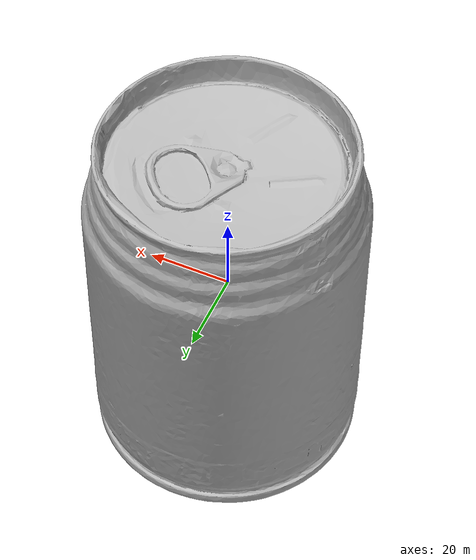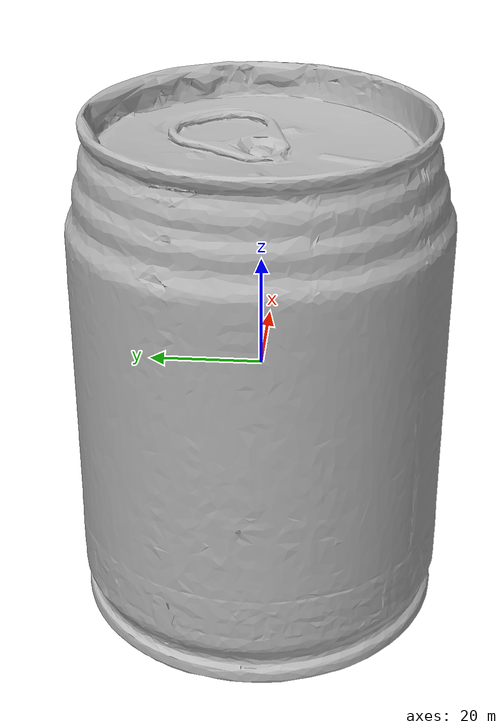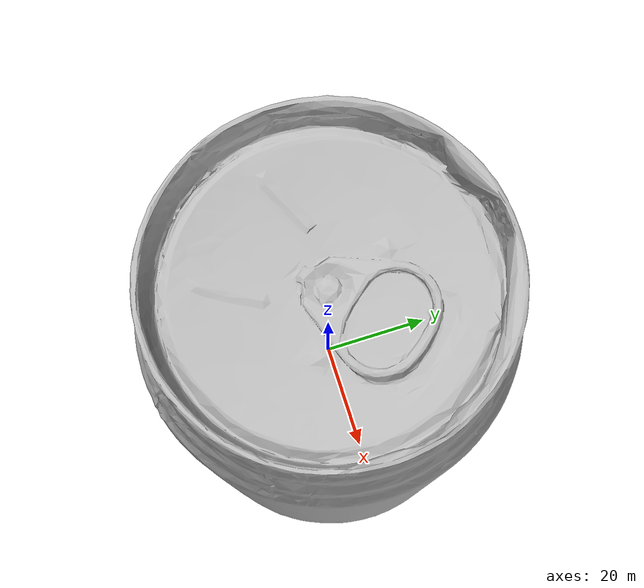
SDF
<sdf version="1.4">
 <world name="default">
  <light name="light1" type="point">
   <pose>0 0 1 0 0 0</pose>
   <diffuse>3 3 3 1</diffuse>
   <specular>3 3 3 1</specular>
  </light>
  <light name="light2" type="point">
   <pose>0 0.5 2 0 0 0</pose>
   <diffuse>1 1 1 1</diffuse>
   <specular>1 1 1 1</specular>
  </light>
  <light name="light3" type="point">
   <pose>0 0.5 2 0 0 0</pose>
   <diffuse>3 3 3 1</diffuse>
   <specular>3 3 3 1</specular>
  </light>
  <scene><ambient>0.7 0.7 0.7</ambient></scene>
  <model name="box1">
   <link name="link_box1">
    <collision name="default">
     <geometry>
      <mesh><uri>model://wooden_puzzle1/collision_meshes/collision.obj</uri><scale>1.0 1.0 1.0</scale></mesh>
     </geometry>
     <surface>
      <friction><ode><mu>0.5</mu><mu2>0.5</mu2></ode></friction>
      <contact><ode><max_vel>0</max_vel><min_depth>0.0001</min_depth><kp>1e8</kp></ode></contact>
     </surface>
    </collision>
    <visual name="default">
     <geometry>
      <mesh><uri>model://wooden_puzzle1/visual_meshes/visual.dae</uri><scale>1.0 1.0 1.0</scale></mesh>
     </geometry>
    </visual>
    <inertial>
     <mass>0.025116289034485817</mass>
     <pose>-0.00017350679263472557 7.972260937094688e-05 -9.191555000143126e-05 -0.07784885804399136 -0.2636065522190298 -0.5528757227143044</pose>
     <inertia>
      <ixx>4.7387575e-06</ixx>
      <iyy>4.647534e-06</iyy>
      <izz>4.7029785e-06</izz>
      <ixy>0</ixy>
      <ixz>0</ixz>
      <iyz>0</iyz>
     </inertia>
    </inertial>
   </link>
   <pose>0.27932319045066833 -0.34008297324180603 0.016802022233605385 0.01051130511290472 -0.009456450948281429 1.8428079066922884</pose>
  </model>
  <model name="box3">
   <link name="link_box3">
    <collision name="default">
     <geometry>
      <mesh><uri>model://wooden_puzzle2/collision_meshes/collision.obj</uri><scale>1.0 1.0 1.0</scale></mesh>
     </geometry>
     <surface>
      <friction><ode><mu>0.5</mu><mu2>0.5</mu2></ode></friction>
      <contact><ode><max_vel>0</max_vel><min_depth>0.0001</min_depth><kp>1e8</kp></ode></contact>
     </surface>
    </collision>
    <visual name="default">
     <geometry>
      <mesh><uri>model://wooden_puzzle2/visual_meshes/visual.dae</uri><scale>1.0 1.0 1.0</scale></mesh>
     </geometry>
    </visual>
    <inertial>
     <mass>0.025376593694090843</mass>
     <pose>2.7402536943554878e-05 4.997663199901581e-05 6.587122334167361e-05 -0.1920355258808483 0.6112750807505014 -0.6338716229052327</pose>
     <inertia>
      <ixx>4.7172375e-06</ixx>
      <iyy>4.8472266e-06</iyy>
      <izz>4.778271e-06</izz>
      <ixy>0</ixy>
      <ixz>0</ixz>
      <iyz>0</iyz>
     </inertia>
    </inertial>
   </link>
   <pose>0.26563501358032227 0.38317978382110596 0.01691773161292076 0.020847671666205173 0.0007220780557473511 -3.096894090657321</pose>
  </model>
  <model name="can1">
   <link name="link_can1">
    <collision name="default">
     <geometry>
      <mesh><uri>model://redbull/collision_meshes/collision.obj</uri><scale>1.0 1.0 1.0</scale></mesh>
     </geometry>
     <surface>
      <friction><ode><mu>0.5</mu><mu2>0.5</mu2></ode></friction>
      <contact><ode><max_vel>0</max_vel><min_depth>0.0001</min_depth><kp>1e8</kp></ode></contact>
     </surface>
    </collision>
    <visual name="default">
     <geometry>
      <mesh><uri>model://redbull/visual_meshes/visual.dae</uri><scale>1.0 1.0 1.0</scale></mesh>
     </geometry>
    </visual>
    <inertial>
     <mass>0.2544018626213074</mass>
     <pose>-2.2126756448415108e-05 -0.0001265947794308886 -0.0006860987632535398 0.0011376600102847077 -0.01080087162846833 0.5858227764205248</pose>
     <inertia>
      <ixx>0.00023919248</ixx>
      <iyy>0.00023939437</iyy>
      <izz>0.00014194298</izz>
      <ixy>0</ixy>
      <ixz>0</ixz>
      <iyz>0</iyz>
     </inertia>
    </inertial>
   </link>
   <pose>-0.06669428944587708 0.18147271871566772 0.04638563469052315 -0.010489331158615976 0.007261327127899081 2.71459956523077</pose>
  </model>
  <model name="can2">
   <link name="link_can2">
    <collision name="default">
     <geometry>
      <mesh><uri>model://pepsi/collision_meshes/collision.obj</uri><scale>1.0 1.0 1.0</scale></mesh>
     </geometry>
     <surface>
      <friction><ode><mu>0.5</mu><mu2>0.5</mu2></ode></friction>
      <contact><ode><max_vel>0</max_vel><min_depth>0.0001</min_depth><kp>1e8</kp></ode></contact>
     </surface>
    </collision>
    <visual name="default">
     <geometry><mesh><uri>model://pepsi/visual_meshes/visual.dae</uri><scale>1.0 1.0 1.0</scale></mesh></geometry>
    </visual>
    <inertial>
     <mass>0.4552207291126251</mass>
     <pose>-7.5590331107378e-05 2.99312814604491e-05 -0.0003384356095921248 -0.0010679690801074441 -0.0021734768369219134 0.5674650232372158</pose>
     <inertia>
      <ixx>0.0009068869</ixx>
      <iyy>0.0009062263</iyy>
      <izz>0.00019301806</izz>
      <ixy>0</ixy>
      <ixz>0</ixz>
      <iyz>0</iyz>
     </inertia>
    </inertial>
   </link>
   <pose>0.11143555492162704 -0.237639918923378 0.07449635118246078 -1.859450690451929e-05 2.2083407493527634e-06 0.2642661962231899</pose>
  </model>
  <physics type="ode">
   <max_contacts>50</max_contacts>
   <ode>
    <solver><type>quick</type><iters>75</iters></solver>
    <constraints>
     <contact_max_correcting_vel>0</contact_max_correcting_vel>
     <contact_surface_layer>0</contact_surface_layer>
    </constraints>
   </ode>
  </physics>
 </world>
</sdf>
